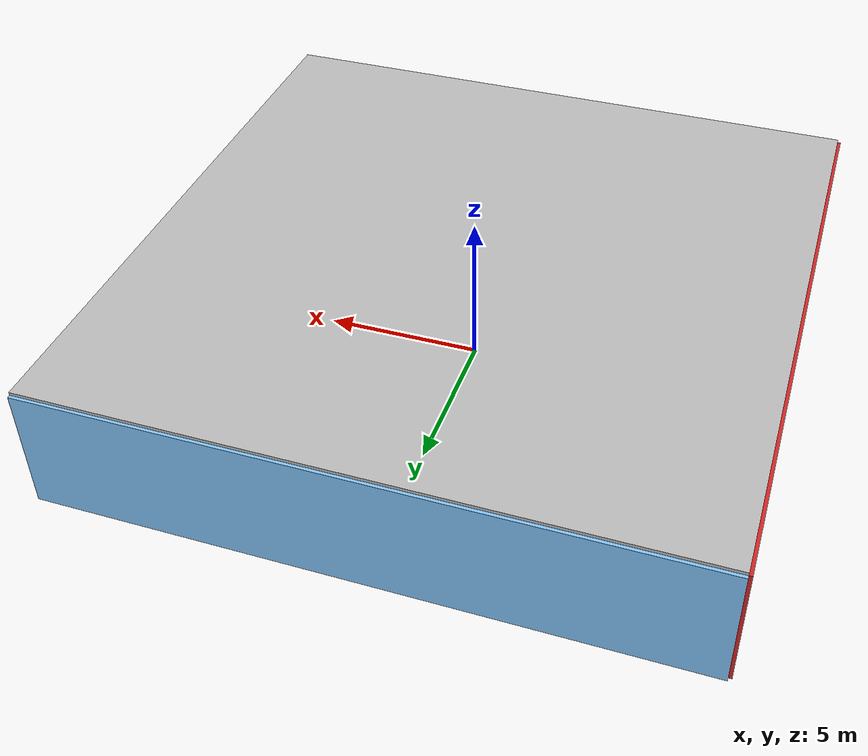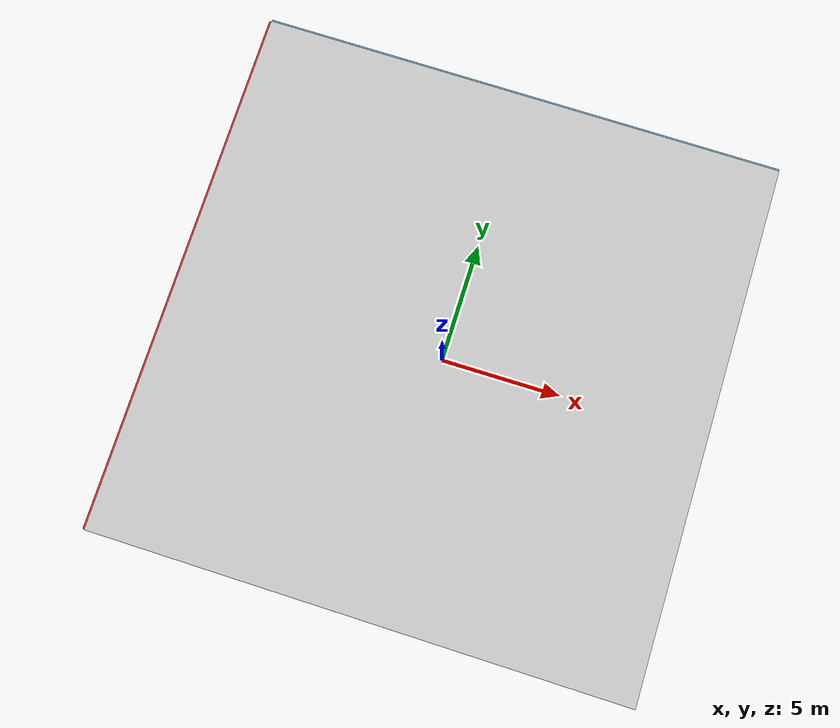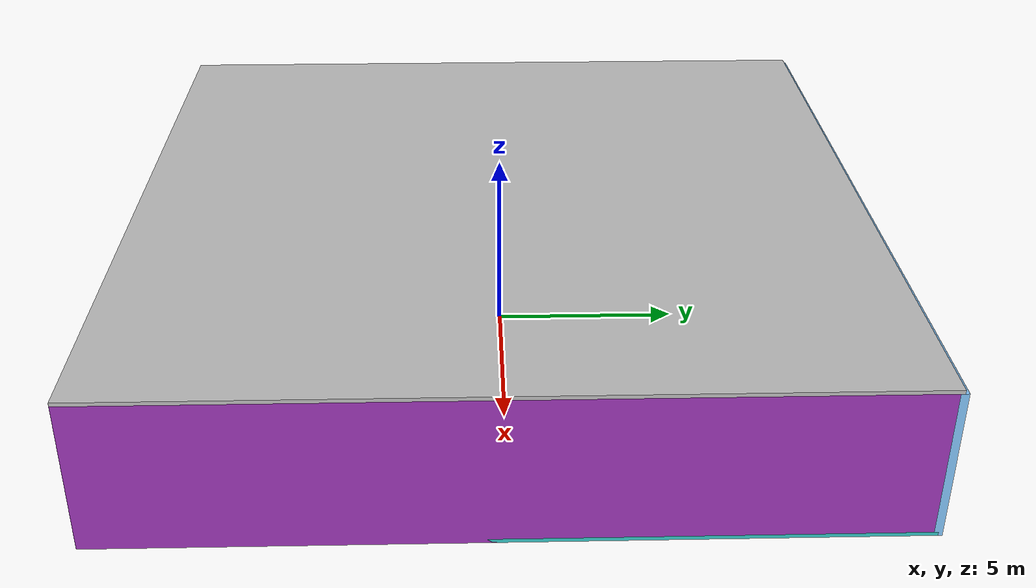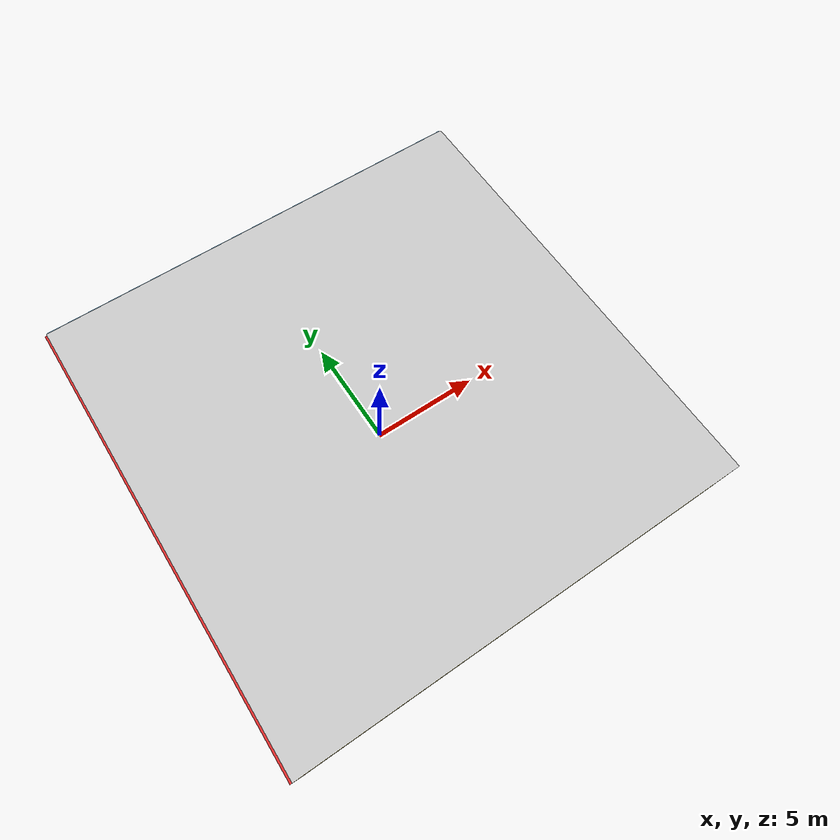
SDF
<sdf version="1.4">
 <world name="default">
  <physics type="ode">
   <max_step_size>0.001</max_step_size>
   <real_time_factor>1</real_time_factor>
   <real_time_update_rate>1000</real_time_update_rate>
   <gravity>0 0 -9.8</gravity>
  </physics>
  <scene><ambient>0.4 0.4 0.4 1</ambient><background>0.7 0.7 0.7 1</background><shadows>1</shadows></scene>
  <model name="Surrounding">
   <static>1</static>
   <link name="Ceiling">
    <collision name="Ceiling_Collision"><geometry><box><size>20 20 0.1</size></box></geometry></collision>
    <visual name="Ceiling_Visual">
     <geometry><box><size>20 20 0.1</size></box></geometry>
     <material>
      <script><uri>file://media/materials/scripts/gazebo.material</uri><name>Gazebo/LightOn</name></script>
     </material>
    </visual>
    <pose>0 0 4.05 0 0 0</pose>
   </link>
   <link name="Wall_South">
    <collision name="Wall_South_Collision">
     <geometry><box><size>20 0 4</size></box></geometry>
     <pose>0 0 2 0 -0 0</pose>
    </collision>
    <visual name="Wall_South_Visual">
     <pose>0 0 2 0 -0 0</pose>
     <geometry><box><size>20 0 4</size></box></geometry>
     <material>
      <script><uri>file://media/materials/scripts/gazebo.material</uri><name>Gazebo/ZincYellow</name></script>
     </material>
    </visual>
    <velocity_decay><linear>0</linear><angular>0</angular></velocity_decay>
    <pose>0 -10 0 0 -0 0</pose>
   </link>
   <link name="Wall_East">
    <collision name="Wall_21_Collision">
     <geometry><box><size>20 0 4</size></box></geometry>
     <pose>0 0 2 0 -0 0</pose>
    </collision>
    <visual name="Wall_21_Visual">
     <pose>0 0 2 0 -0 0</pose>
     <geometry><box><size>20 0 4</size></box></geometry>
     <material>
      <script><uri>file://media/materials/scripts/gazebo.material</uri><name>Gazebo/Purple</name></script>
     </material>
    </visual>
    <velocity_decay><linear>0</linear><angular>0</angular></velocity_decay>
    <pose>10 0 0 0 -0 1.5708</pose>
   </link>
   <link name="Wall_North">
    <collision name="Wall_22_Collision">
     <geometry><box><size>20 0.2 4</size></box></geometry>
     <pose>0 0 2 0 -0 0</pose>
    </collision>
    <visual name="Wall_22_Visual">
     <pose>0 0 2 0 -0 0</pose>
     <geometry><box><size>20 0.2 4</size></box></geometry>
     <material>
      <script><uri>file://media/materials/scripts/gazebo.material</uri><name>Gazebo/SkyBlue</name></script>
     </material>
    </visual>
    <velocity_decay><linear>0</linear><angular>0</angular></velocity_decay>
    <pose>0 10 0 0 -0 0</pose>
   </link>
   <link name="Wall_West">
    <collision name="Wall_23_Collision">
     <geometry><box><size>20 0.2 4</size></box></geometry>
     <pose>0 0 2 0 -0 0</pose>
    </collision>
    <visual name="Wall_23_Visual">
     <pose>0 0 2 0 -0 0</pose>
     <geometry><box><size>20 0.2 4</size></box></geometry>
     <material>
      <script><uri>file://media/materials/scripts/gazebo.material</uri><name>Gazebo/RedGlow</name></script>
     </material>
    </visual>
    <velocity_decay><linear>0</linear><angular>0</angular></velocity_decay>
    <pose>-10 0 0 0 0 -1.5708</pose>
   </link>
   <link name="Ground_link">
    <collision name="collision">
     <pose>0 0 .05 0 -0 0</pose>
     <geometry><box><size>20 20 0.1</size></box></geometry>
    </collision>
    <visual name="visual">
     <pose>0 0 .05 0 -0 0</pose>
     <geometry><box><size>20 20 0.1</size></box></geometry>
     <material>
      <script><uri>file://media/materials/scripts/gazebo.material</uri><name>Gazebo/Turquoise</name></script>
     </material>
    </visual>
   </link>
   <static>1</static>
  </model>
  <spherical_coordinates>
   <surface_model>EARTH_WGS84</surface_model>
   <latitude_deg>0</latitude_deg>
   <longitude_deg>0</longitude_deg>
   <elevation>0</elevation>
   <heading_deg>0</heading_deg>
  </spherical_coordinates>
  <light name="lightball_0" type="diffuse">
   <diffuse>0.8 0.8 0.8 1</diffuse>
   <specular>0.2 0.2 0.2 1</specular>
   <attenuation>
    <range>100</range>
    <constant>0.7</constant>
    <linear>0.01</linear>
    <quadratic>0.001</quadratic>
   </attenuation>
   <direction>-0.5 0.1 -0.9</direction>
   <pose>8.95028993874 9.86608121176 1.67465237879 0 0 0</pose>
  </light>
  <light name="lightball_1" type="diffuse">
   <diffuse>0.8 0.8 0.8 1</diffuse>
   <specular>0.2 0.2 0.2 1</specular>
   <attenuation>
    <range>100</range>
    <constant>0.7</constant>
    <linear>0.01</linear>
    <quadratic>0.001</quadratic>
   </attenuation>
   <direction>-0.5 0.1 -0.9</direction>
   <pose>-1.20639713504 8.48574812001 1.12496166878 0 0 0</pose>
  </light>
  <light name="lightball_2" type="diffuse">
   <diffuse>0.8 0.8 0.8 1</diffuse>
   <specular>0.2 0.2 0.2 1</specular>
   <attenuation>
    <range>100</range>
    <constant>0.7</constant>
    <linear>0.01</linear>
    <quadratic>0.001</quadratic>
   </attenuation>
   <direction>-0.5 0.1 -0.9</direction>
   <pose>8.15213312736 7.42891405077 0.645958358179 0 0 0</pose>
  </light>
  <light name="lightball_3" type="diffuse">
   <diffuse>0.8 0.8 0.8 1</diffuse>
   <specular>0.2 0.2 0.2 1</specular>
   <attenuation>
    <range>100</range>
    <constant>0.7</constant>
    <linear>0.01</linear>
    <quadratic>0.001</quadratic>
   </attenuation>
   <direction>-0.5 0.1 -0.9</direction>
   <pose>6.42788189035 -4.17717059298 3.85780601094 0 0 0</pose>
  </light>
  <light name="lightball_4" type="diffuse">
   <diffuse>0.8 0.8 0.8 1</diffuse>
   <specular>0.2 0.2 0.2 1</specular>
   <attenuation>
    <range>100</range>
    <constant>0.7</constant>
    <linear>0.01</linear>
    <quadratic>0.001</quadratic>
   </attenuation>
   <direction>-0.5 0.1 -0.9</direction>
   <pose>-7.56523173031 8.71639503275 1.48753608736 0 0 0</pose>
  </light>
  <light name="lightball_5" type="diffuse">
   <diffuse>0.8 0.8 0.8 1</diffuse>
   <specular>0.2 0.2 0.2 1</specular>
   <attenuation>
    <range>100</range>
    <constant>0.7</constant>
    <linear>0.01</linear>
    <quadratic>0.001</quadratic>
   </attenuation>
   <direction>-0.5 0.1 -0.9</direction>
   <pose>-5.16058276856 -4.58495752566 2.59354010029 0 0 0</pose>
  </light>
  <light name="lightball_6" type="diffuse">
   <diffuse>0.8 0.8 0.8 1</diffuse>
   <specular>0.2 0.2 0.2 1</specular>
   <attenuation>
    <range>100</range>
    <constant>0.7</constant>
    <linear>0.01</linear>
    <quadratic>0.001</quadratic>
   </attenuation>
   <direction>-0.5 0.1 -0.9</direction>
   <pose>2.47620397588 8.79878563829 0.627067405999 0 0 0</pose>
  </light>
  <light name="lightball_7" type="diffuse">
   <diffuse>0.8 0.8 0.8 1</diffuse>
   <specular>0.2 0.2 0.2 1</specular>
   <attenuation>
    <range>100</range>
    <constant>0.7</constant>
    <linear>0.01</linear>
    <quadratic>0.001</quadratic>
   </attenuation>
   <direction>-0.5 0.1 -0.9</direction>
   <pose>-1.85805770347 -1.72719602712 2.09597684481 0 0 0</pose>
  </light>
  <include><uri>model://cabinet</uri><pose>-7.21158852985 -8.11205159904 0 0 0 0.810239116949</pose></include>
  <include><uri>model://cabinet</uri><pose>-7.98450925783 7.71634611823 0 0 0 1.92077804284</pose></include>
  <include>
   <uri>model://construction_cone</uri>
   <pose>1.00520729011 -1.41224203829 0 0 0 2.88266356573</pose>
  </include>
  <include><uri>model://table</uri><pose>4.98121552759 1.68781884229 0 0 0 2.03809255386</pose></include>
  <include><uri>model://table</uri><pose>8.02329483015 7.28885532837 0 0 0 1.51090224838</pose></include>
 </world>
</sdf>

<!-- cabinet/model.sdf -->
<sdf version="1.5">
  <model name="cabinet">
    <static>true</static>
    <link name="cabinet_bottom_plate">
      <inertial>
        <pose>0 0 -1 0 0 0</pose>
        <inertia>
          <ixx>2.050000</ixx>
          <ixy>0</ixy>
          <ixz>0</ixz>
          <iyy>2.050000</iyy>
          <iyz>0</iyz>
          <izz>2.050000</izz>
        </inertia>
        <mass>25.000000</mass>
      </inertial>
      <collision name="cabinet_bottom_plate_geom">
        <pose>0 0 0.010000 0 0 0</pose>
        <geometry>
          <box>
            <size>0.450000 0.450000 0.020000</size>
          </box>
        </geometry>
      </collision>
      <visual name="cabinet_bottom_plate_geom_visual">
        <pose>0 0 0.010000 0 0 0</pose>
        <geometry>
          <box>
            <size>0.450000 0.450000 0.020000</size>
          </box>
        </geometry>
        <material>
          <script>
            <uri>model://media/materials/scripts/gazebo.material</uri>
            <name>Gazebo/Wood</name>
          </script>
        </material>
      </visual>
      <collision name="cabinet_bottom_plate_geom_cabinet_back_plate">
        <pose>0.235000 0 0.510000 0 0 0</pose>
        <geometry>
          <box>
            <size>0.020000 0.450000 1.020000</size>
          </box>
        </geometry>
      </collision>
      <visual name="cabinet_bottom_plate_geom_cabinet_back_plate_visual">
        <pose>0.235000 0 0.510000 0 0 0</pose>
        <geometry>
          <box>
            <size>0.020000 0.450000 1.020000</size>
          </box>
        </geometry>
        <material>
          <script>
            <uri>model://media/materials/scripts/gazebo.material</uri>
            <name>Gazebo/Wood</name>
          </script>
        </material>
      </visual>
      <collision name="cabinet_bottom_plate_geom_cabinet_left_plate">
        <pose>0 0.235000 0.510000 0 0 0</pose>
        <geometry>
          <box>
            <size>0.450000 0.020000 1.020000</size>
          </box>
        </geometry>
      </collision>
      <visual name="cabinet_bottom_plate_geom_cabinet_left_plate_visual">
        <pose>0 0.235000 0.510000 0 0 0</pose>
        <geometry>
          <box>
            <size>0.450000 0.020000 1.020000</size>
          </box>
        </geometry>
        <material>
          <script>
            <uri>model://media/materials/scripts/gazebo.material</uri>
            <name>Gazebo/Wood</name>
          </script>
        </material>
      </visual>
      <collision name="cabinet_bottom_plate_geom_cabinet_middle_plate">
        <pose>0 0 0.510000 0 0 0</pose>
        <geometry>
          <box>
            <size>0.450000 0.450000 0.020000</size>
          </box>
        </geometry>
      </collision>
      <visual name="cabinet_bottom_plate_geom_cabinet_middle_plate_visual">
        <pose>0 0 0.510000 0 0 0</pose>
        <geometry>
          <box>
            <size>0.450000 0.450000 0.020000</size>
          </box>
        </geometry>
        <material>
          <script>
            <uri>model://media/materials/scripts/gazebo.material</uri>
            <name>Gazebo/Wood</name>
          </script>
        </material>
      </visual>
      <collision name="cabinet_bottom_plate_geom_cabinet_right_plate">
        <pose>0 -0.235000 0.510000 0 0 0</pose>
        <geometry>
          <box>
            <size>0.450000 0.020000 1.020000</size>
          </box>
        </geometry>
      </collision>
      <visual name="cabinet_bottom_plate_geom_cabinet_right_plate_visual">
        <pose>0 -0.235000 0.510000 0 0 0</pose>
        <geometry>
          <box>
            <size>0.450000 0.020000 1.020000</size>
          </box>
        </geometry>
        <material>
          <script>
            <uri>model://media/materials/scripts/gazebo.material</uri>
            <name>Gazebo/Wood</name>
          </script>
        </material>
      </visual>
      <collision name="cabinet_bottom_plate_geom_cabinet_top_plate">
        <pose>0 0 1.010000 0 0 0</pose>
        <geometry>
          <box>
            <size>0.450000 0.450000 0.020000</size>
          </box>
        </geometry>
      </collision>
      <visual name="cabinet_bottom_plate_geom_cabinet_top_plate_visual">
        <pose>0 0 1.010000 0 0 0</pose>
        <geometry>
          <box>
            <size>0.450000 0.450000 0.020000</size>
          </box>
        </geometry>
        <material>
          <script>
            <uri>model://media/materials/scripts/gazebo.material</uri>
            <name>Gazebo/Wood</name>
          </script>
        </material>
      </visual>
    </link>
  </model>
</sdf>

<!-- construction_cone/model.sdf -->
<sdf version="1.5">
  <model name="Construction Cone">
    <link name="link">
      <collision name="collision">
        <geometry>
          <mesh>
            <scale>10 10 10</scale>
            <uri>file://isr-testbed/construction_cone/meshes/construction_cone.dae</uri>
          </mesh>
        </geometry>
      </collision>
      <visual name="visual">
        <geometry>
          <mesh>
            <scale>10 10 10</scale>
            <uri>file://isr-testbed/construction_cone/meshes/construction_cone.dae</uri>
          </mesh>
        </geometry>
      </visual>
    </link>
  </model>
</sdf>

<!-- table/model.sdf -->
<sdf version="1.5">
  <model name="table">
    <static>true</static>
    <link name="link">
      <collision name="surface">
        <pose>0 0 1.0 0 0 0</pose>
        <geometry>
          <box>
            <size>1.5 0.8 0.03</size>
          </box>
        </geometry>
        <surface>
          <friction>
            <ode>
              <mu>0.6</mu>
              <mu2>0.6</mu2>
            </ode>
          </friction>
        </surface>
      </collision>
      <visual name="visual1">
        <pose>0 0 1.0 0 0 0</pose>
        <geometry>
          <box>
            <size>1.5 0.8 0.03</size>
          </box>
        </geometry>
        <material>
          <script>
            <uri>model://media/materials/scripts/gazebo.material</uri>
            <name>Gazebo/Wood</name>
          </script>
        </material>
      </visual>
      <collision name="front_left_leg">
        <pose>0.68 0.38 0.5 0 0 0</pose>
        <geometry>
          <cylinder>
            <radius>0.02</radius>
            <length>1.0</length>
          </cylinder>
        </geometry>
      </collision>
      <visual name="front_left_leg">
        <pose>0.68 0.38 0.5 0 0 0</pose>
        <geometry>
          <cylinder>
            <radius>0.02</radius>
            <length>1.0</length>
          </cylinder>
        </geometry>
        <material>
          <script>
            <uri>model://media/materials/scripts/gazebo.material</uri>
            <name>Gazebo/Grey</name>
          </script>
        </material>
      </visual>
      <collision name="front_right_leg">
        <pose>0.68 -0.38 0.5 0 0 0</pose>
        <geometry>
          <cylinder>
            <radius>0.02</radius>
            <length>1.0</length>
          </cylinder>
        </geometry>
      </collision>
      <visual name="front_right_leg">
        <pose>0.68 -0.38 0.5 0 0 0</pose>
        <geometry>
          <cylinder>
            <radius>0.02</radius>
            <length>1.0</length>
          </cylinder>
        </geometry>
        <material>
          <script>
            <uri>model://media/materials/scripts/gazebo.material</uri>
            <name>Gazebo/Grey</name>
          </script>
        </material>
      </visual>
      <collision name="back_right_leg">
        <pose>-0.68 -0.38 0.5 0 0 0</pose>
        <geometry>
          <cylinder>
            <radius>0.02</radius>
            <length>1.0</length>
          </cylinder>
        </geometry>
      </collision>
      <visual name="back_right_leg">
        <pose>-0.68 -0.38 0.5 0 0 0</pose>
        <geometry>
          <cylinder>
            <radius>0.02</radius>
            <length>1.0</length>
          </cylinder>
        </geometry>
        <material>
          <script>
            <uri>model://media/materials/scripts/gazebo.material</uri>
            <name>Gazebo/Grey</name>
          </script>
        </material>
      </visual>
      <collision name="back_left_leg">
        <pose>-0.68 0.38 0.5 0 0 0</pose>
        <geometry>
          <cylinder>
            <radius>0.02</radius>
            <length>1.0</length>
          </cylinder>
        </geometry>
      </collision>
      <visual name="back_left_leg">
        <pose>-0.68 0.38 0.5 0 0 0</pose>
        <geometry>
          <cylinder>
            <radius>0.02</radius>
            <length>1.0</length>
          </cylinder>
        </geometry>
        <material>
          <script>
            <uri>model://media/materials/scripts/gazebo.material</uri>
            <name>Gazebo/Grey</name>
          </script>
        </material>
      </visual>
    </link>
  </model>
</sdf>
